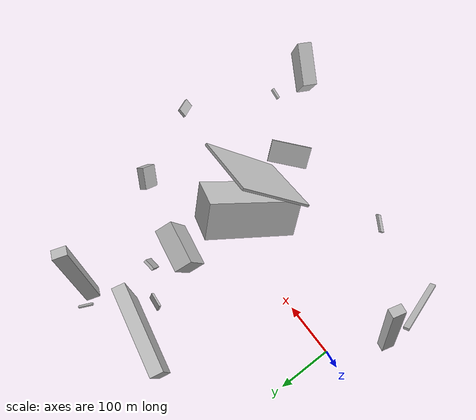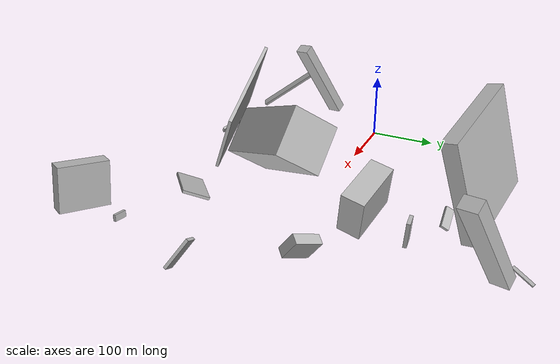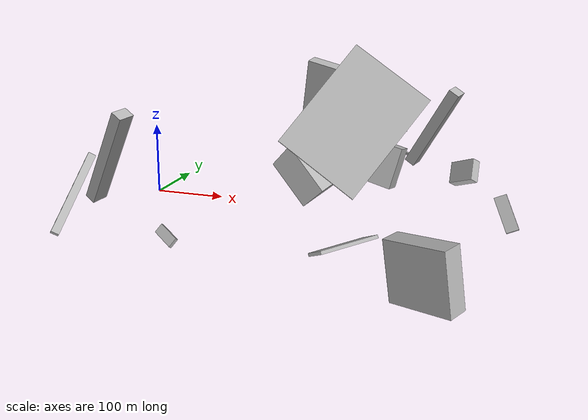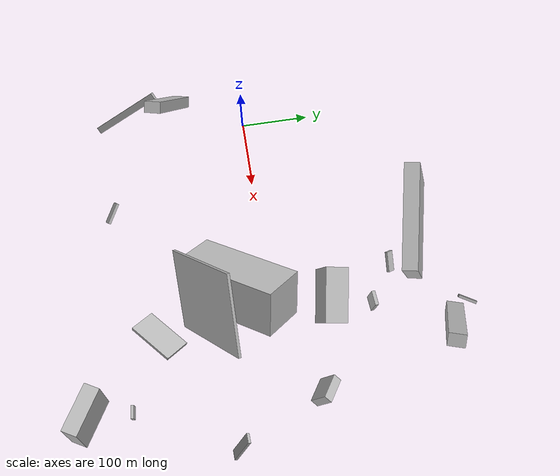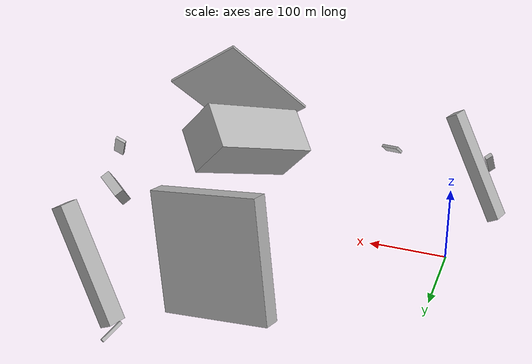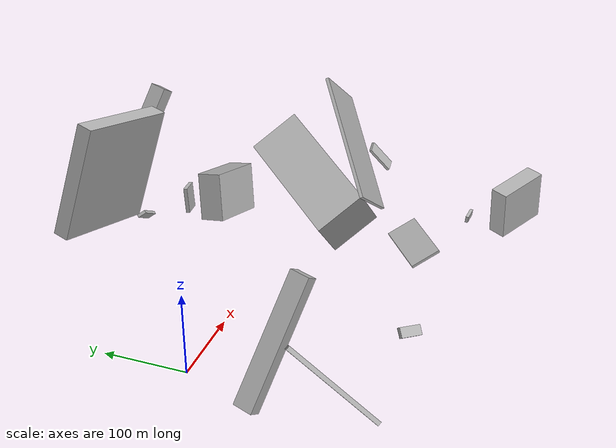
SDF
<sdf version="1.6">
 <world name="default">
  <scene>
   <sky><clouds><speed>12</speed></clouds></sky>
   <ambient>0.4 0.4 0.4 1</ambient>
   <background>0.7 0.7 0.7 1</background>
   <shadows>1</shadows>
  </scene>
  <gravity>0 0 -9.8066</gravity>
  <magnetic_field>6e-06 2.3e-05 -4.2e-05</magnetic_field>
  <physics default="0" name="default_physics" type="ode">
   <ode>
    <solver>
     <type>quick</type>
     <iters>10</iters>
     <sor>1.0</sor>
     <use_dynamic_moi_rescaling>0</use_dynamic_moi_rescaling>
    </solver>
    <constraints>
     <cfm>0</cfm>
     <erp>0.2</erp>
     <contact_max_correcting_vel>100</contact_max_correcting_vel>
     <contact_surface_layer>0.001</contact_surface_layer>
    </constraints>
   </ode>
   <max_step_size>0.004</max_step_size>
   <real_time_factor>1</real_time_factor>
   <real_time_update_rate>250</real_time_update_rate>
  </physics>
  <light name="sun" type="directional">
   <pose>0 0 10 0 0 0</pose>
   <diffuse>0.8 0.8 0.8 1</diffuse>
   <specular>0.2 0.2 0.2 1</specular>
   <attenuation>
    <range>1000</range>
    <constant>0.9</constant>
    <linear>0.01</linear>
    <quadratic>0.001</quadratic>
   </attenuation>
   <direction>-0.5 0.1 -0.9</direction>
  </light>
  <model name="building_1">
   <static>0</static>
   <pose>267.40128889864 -22.72226324180687 80.44710280605986 0.9383327257395114 -0.36251167718548744 0.9597529692708019</pose>
   <link name="link">
    <gravity>0</gravity>
    <pose>0 0 32.5 0 0 0</pose>
    <collision name="collision"><geometry><box><size>150 66 65</size></box></geometry></collision>
    <visual name="visual">
     <cast_shadows>0</cast_shadows>
     <geometry><box><size>150 66 65</size></box></geometry>
     <material>
      <script>
       <uri>model://HANNAS_wall/materials/scripts</uri>
       <uri>model://HANNAS_wall/materials/textures</uri>
       <name>vrc/HANNAS_wall</name>
      </script>
     </material>
    </visual>
   </link>
  </model>
  <model name="building_2">
   <static>0</static>
   <pose>-6.441502109178805 -109.20150466244041 73.80507658843207 0.20190506238486727 -1.0067425083857957 -0.45583038719318736</pose>
   <link name="link">
    <gravity>0</gravity>
    <pose>0 0 8.0 0 0 0</pose>
    <collision name="collision"><geometry><box><size>150 23 16</size></box></geometry></collision>
    <visual name="visual">
     <cast_shadows>0</cast_shadows>
     <geometry><box><size>150 23 16</size></box></geometry>
     <material>
      <script>
       <uri>model://HANNAS_wall/materials/scripts</uri>
       <uri>model://HANNAS_wall/materials/textures</uri>
       <name>vrc/HANNAS_wall</name>
      </script>
     </material>
    </visual>
   </link>
  </model>
  <model name="building_3">
   <static>0</static>
   <pose>438.9640767617406 59.36678478084165 48.62920103692268 1.036984852668545 -0.35412541486079646 -0.5717677172767363</pose>
   <link name="link">
    <gravity>0</gravity>
    <pose>0 0 6.5 0 0 0</pose>
    <collision name="collision"><geometry><box><size>37 30 13</size></box></geometry></collision>
    <visual name="visual">
     <cast_shadows>0</cast_shadows>
     <geometry><box><size>37 30 13</size></box></geometry>
     <material>
      <script>
       <uri>model://HANNAS_wall/materials/scripts</uri>
       <uri>model://HANNAS_wall/materials/textures</uri>
       <name>vrc/HANNAS_wall</name>
      </script>
     </material>
    </visual>
   </link>
  </model>
  <model name="building_4">
   <static>0</static>
   <pose>162.06087139078323 224.4354236449335 108.32673154225289 -2.405404353956419 -1.2760605250603108 -0.9438756864817991</pose>
   <link name="link">
    <gravity>0</gravity>
    <pose>0 0 71.5 0 0 0</pose>
    <collision name="collision"><geometry><box><size>150 21 143</size></box></geometry></collision>
    <visual name="visual">
     <cast_shadows>0</cast_shadows>
     <geometry><box><size>150 21 143</size></box></geometry>
     <material>
      <script>
       <uri>model://HANNAS_wall/materials/scripts</uri>
       <uri>model://HANNAS_wall/materials/textures</uri>
       <name>vrc/HANNAS_wall</name>
      </script>
     </material>
    </visual>
   </link>
  </model>
  <model name="building_5">
   <static>0</static>
   <pose>377.40344999533386 255.6612917493993 72.07604746109631 1.7783866111512825 -1.0156819852797625 -0.5015250271805513</pose>
   <link name="link">
    <gravity>0</gravity>
    <pose>0 0 12.0 0 0 0</pose>
    <collision name="collision"><geometry><box><size>150 18 24</size></box></geometry></collision>
    <visual name="visual">
     <cast_shadows>0</cast_shadows>
     <geometry><box><size>150 18 24</size></box></geometry>
     <material>
      <script>
       <uri>model://HANNAS_wall/materials/scripts</uri>
       <uri>model://HANNAS_wall/materials/textures</uri>
       <name>vrc/HANNAS_wall</name>
      </script>
     </material>
    </visual>
   </link>
  </model>
  <model name="building_6">
   <static>0</static>
   <pose>484.1165674559843 -68.37549140553199 37.167699831752 0.850189460927005 -0.8912920779788065 2.2197294908237657</pose>
   <link name="link">
    <gravity>0</gravity>
    <pose>0 0 7.5 0 0 0</pose>
    <collision name="collision"><geometry><box><size>44 4 15</size></box></geometry></collision>
    <visual name="visual">
     <cast_shadows>0</cast_shadows>
     <geometry><box><size>44 4 15</size></box></geometry>
     <material>
      <script>
       <uri>model://HANNAS_wall/materials/scripts</uri>
       <uri>model://HANNAS_wall/materials/textures</uri>
       <name>vrc/HANNAS_wall</name>
      </script>
     </material>
    </visual>
   </link>
  </model>
  <model name="building_7">
   <static>0</static>
   <pose>121.64178531019958 -215.2166947860085 18.872850155979993 -0.6831303104901074 0.2778270706752518 -0.5643651410954383</pose>
   <link name="link">
    <gravity>0</gravity>
    <pose>0 0 6.0 0 0 0</pose>
    <collision name="collision"><geometry><box><size>32 4 12</size></box></geometry></collision>
    <visual name="visual">
     <cast_shadows>0</cast_shadows>
     <geometry><box><size>32 4 12</size></box></geometry>
     <material>
      <script>
       <uri>model://HANNAS_wall/materials/scripts</uri>
       <uri>model://HANNAS_wall/materials/textures</uri>
       <name>vrc/HANNAS_wall</name>
      </script>
     </material>
    </visual>
   </link>
  </model>
  <model name="building_8">
   <static>0</static>
   <pose>419.9252281160367 -210.6648749184582 11.197993588485026 -2.390579463813586 -1.4132730072620843 -2.3997368085265016</pose>
   <link name="link">
    <gravity>0</gravity>
    <pose>0 0 2.0 0 0 0</pose>
    <collision name="collision"><geometry><box><size>9 19 4</size></box></geometry></collision>
    <visual name="visual">
     <cast_shadows>0</cast_shadows>
     <geometry><box><size>9 19 4</size></box></geometry>
     <material>
      <script>
       <uri>model://HANNAS_wall/materials/scripts</uri>
       <uri>model://HANNAS_wall/materials/textures</uri>
       <name>vrc/HANNAS_wall</name>
      </script>
     </material>
    </visual>
   </link>
  </model>
  <model name="building_9">
   <static>0</static>
   <pose>304.5734079066175 144.68696264897739 24.99957135834224 1.5970293063072218 0.07053135007024598 1.6617498493065075</pose>
   <link name="link">
    <gravity>0</gravity>
    <pose>0 0 10.5 0 0 0</pose>
    <collision name="collision"><geometry><box><size>5 35 21</size></box></geometry></collision>
    <visual name="visual">
     <cast_shadows>0</cast_shadows>
     <geometry><box><size>5 35 21</size></box></geometry>
     <material>
      <script>
       <uri>model://HANNAS_wall/materials/scripts</uri>
       <uri>model://HANNAS_wall/materials/textures</uri>
       <name>vrc/HANNAS_wall</name>
      </script>
     </material>
    </visual>
   </link>
  </model>
  <model name="building_10">
   <static>0</static>
   <pose>342.2035101781289 79.32716399657178 42.24157691287354 -0.7005255531635031 -1.2780108332793378 0.5578112433002181</pose>
   <link name="link">
    <gravity>0</gravity>
    <pose>0 0 38.5 0 0 0</pose>
    <collision name="collision"><geometry><box><size>60 32 77</size></box></geometry></collision>
    <visual name="visual">
     <cast_shadows>0</cast_shadows>
     <geometry><box><size>60 32 77</size></box></geometry>
     <material>
      <script>
       <uri>model://HANNAS_wall/materials/scripts</uri>
       <uri>model://HANNAS_wall/materials/textures</uri>
       <name>vrc/HANNAS_wall</name>
      </script>
     </material>
    </visual>
   </link>
  </model>
  <model name="building_11">
   <static>0</static>
   <pose>-19.294169686310514 -171.73001191988092 45.703381178354874 -0.8680626897034471 -0.6572245237599259 1.632371755228953</pose>
   <link name="link">
    <gravity>0</gravity>
    <pose>0 0 5.0 0 0 0</pose>
    <collision name="collision"><geometry><box><size>120 5 10</size></box></geometry></collision>
    <visual name="visual">
     <cast_shadows>0</cast_shadows>
     <geometry><box><size>120 5 10</size></box></geometry>
     <material>
      <script>
       <uri>model://HANNAS_wall/materials/scripts</uri>
       <uri>model://HANNAS_wall/materials/textures</uri>
       <name>vrc/HANNAS_wall</name>
      </script>
     </material>
    </visual>
   </link>
  </model>
  <model name="building_12">
   <static>0</static>
   <pose>388.9782180471276 -254.66355270269406 39.63941964610024 1.4482066489038992 -0.06388810916988226 1.0650124827639584</pose>
   <link name="link">
    <gravity>0</gravity>
    <pose>0 0 34.5 0 0 0</pose>
    <collision name="collision"><geometry><box><size>23 64 69</size></box></geometry></collision>
    <visual name="visual">
     <cast_shadows>0</cast_shadows>
     <geometry><box><size>23 64 69</size></box></geometry>
     <material>
      <script>
       <uri>model://HANNAS_wall/materials/scripts</uri>
       <uri>model://HANNAS_wall/materials/textures</uri>
       <name>vrc/HANNAS_wall</name>
      </script>
     </material>
    </visual>
   </link>
  </model>
  <model name="building_13">
   <static>0</static>
   <pose>318.08524092167835 -163.62958565230812 18.462568835835405 -3.0175191654626032 -0.436425169269586 -0.9046565356607574</pose>
   <link name="link">
    <gravity>0</gravity>
    <pose>0 0 2.0 0 0 0</pose>
    <collision name="collision"><geometry><box><size>39 71 4</size></box></geometry></collision>
    <visual name="visual">
     <cast_shadows>0</cast_shadows>
     <geometry><box><size>39 71 4</size></box></geometry>
     <material>
      <script>
       <uri>model://HANNAS_wall/materials/scripts</uri>
       <uri>model://HANNAS_wall/materials/textures</uri>
       <name>vrc/HANNAS_wall</name>
      </script>
     </material>
    </visual>
   </link>
  </model>
  <model name="building_14">
   <static>0</static>
   <pose>273.85769813633704 -121.42168492703843 88.77980341617075 0.4896649457417714 -0.6051395872453074 3.132204922551759</pose>
   <link name="link">
    <gravity>0</gravity>
    <pose>0 0 75.0 0 0 0</pose>
    <collision name="collision"><geometry><box><size>111 4 150</size></box></geometry></collision>
    <visual name="visual">
     <cast_shadows>0</cast_shadows>
     <geometry><box><size>111 4 150</size></box></geometry>
     <material>
      <script>
       <uri>model://HANNAS_wall/materials/scripts</uri>
       <uri>model://HANNAS_wall/materials/textures</uri>
       <name>vrc/HANNAS_wall</name>
      </script>
     </material>
    </visual>
   </link>
  </model>
  <model name="building_15">
   <static>0</static>
   <pose>324.16479575560453 270.86738341984767 17.4610700571103 2.138919269926667 0.8991119104892857 -3.098930026916588</pose>
   <link name="link">
    <gravity>0</gravity>
    <pose>0 0 15.0 0 0 0</pose>
    <collision name="collision"><geometry><box><size>4 4 30</size></box></geometry></collision>
    <visual name="visual">
     <cast_shadows>0</cast_shadows>
     <geometry><box><size>4 4 30</size></box></geometry>
     <material>
      <script>
       <uri>model://HANNAS_wall/materials/scripts</uri>
       <uri>model://HANNAS_wall/materials/textures</uri>
       <name>vrc/HANNAS_wall</name>
      </script>
     </material>
    </visual>
   </link>
  </model>
  <model name="building_16">
   <static>0</static>
   <pose>272.30599856808783 181.19840224450917 13.910075967643614 -0.9128470899498924 0.5963512995540358 1.9836929860676267</pose>
   <link name="link">
    <gravity>0</gravity>
    <pose>0 0 15.0 0 0 0</pose>
    <collision name="collision"><geometry><box><size>12 4 30</size></box></geometry></collision>
    <visual name="visual">
     <cast_shadows>0</cast_shadows>
     <geometry><box><size>12 4 30</size></box></geometry>
     <material>
      <script>
       <uri>model://HANNAS_wall/materials/scripts</uri>
       <uri>model://HANNAS_wall/materials/textures</uri>
       <name>vrc/HANNAS_wall</name>
      </script>
     </material>
    </visual>
   </link>
  </model>
 </world>
</sdf>
